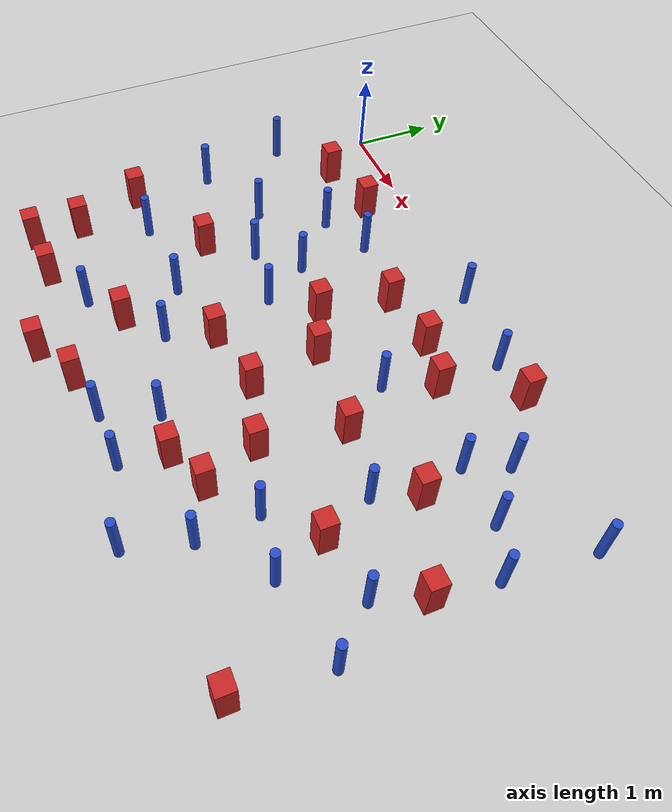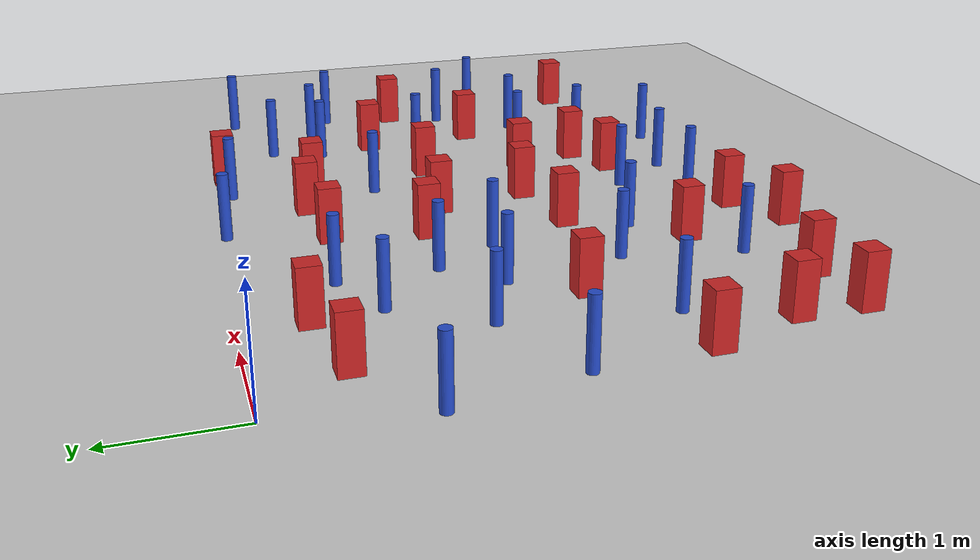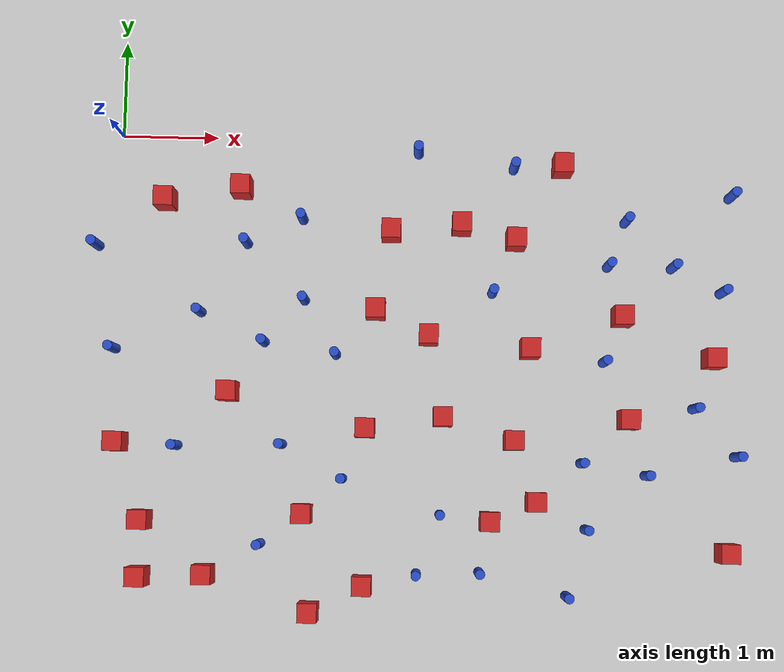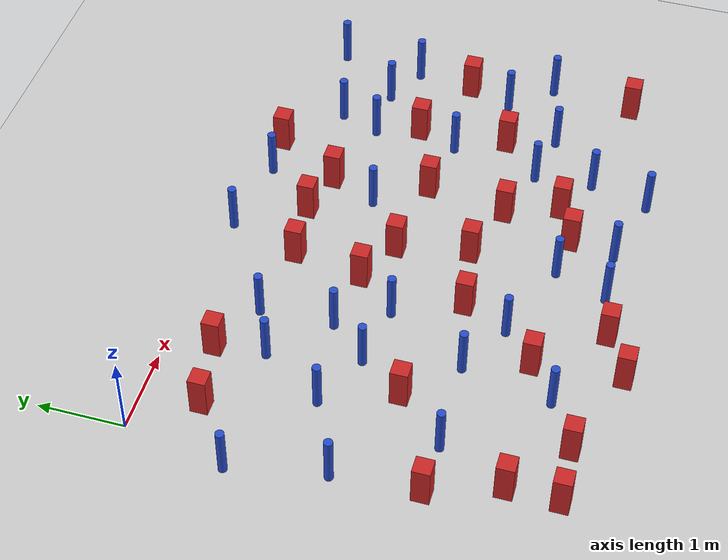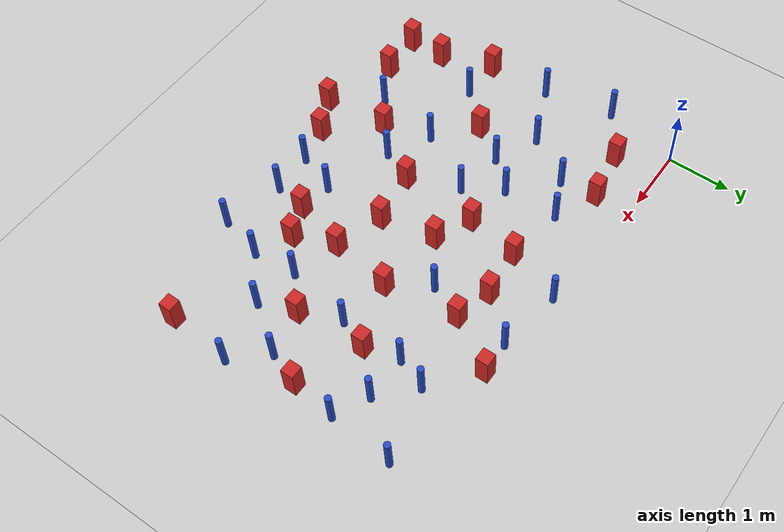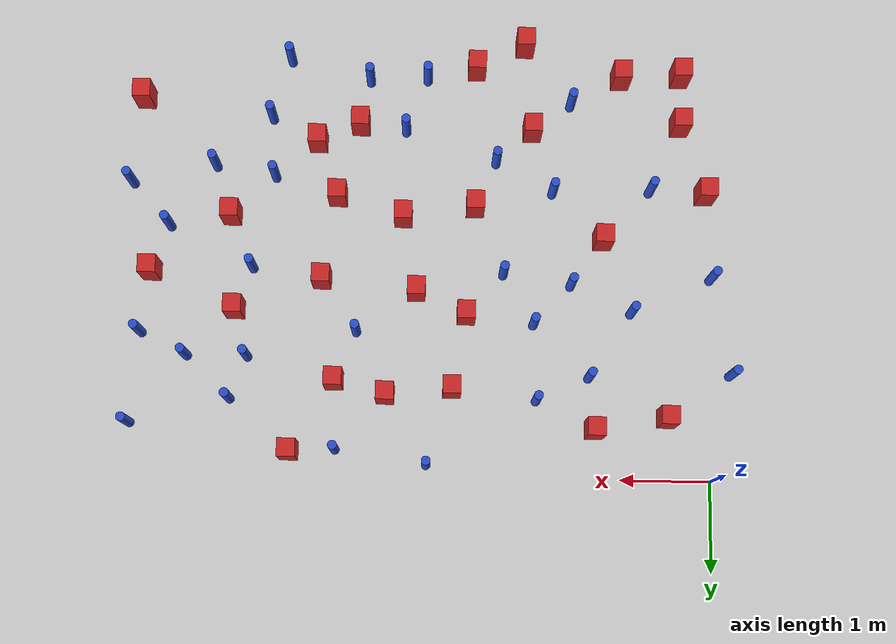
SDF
<sdf version="1.6">
 <world name="default">
  <model name="ground_plane">
   <static>1</static>
   <link name="link">
    <collision name="collision">
     <geometry><plane><normal>0 0 1</normal><size>100 100</size></plane></geometry>
     <surface><friction><ode><mu>100</mu><mu2>50</mu2></ode></friction></surface>
    </collision>
    <visual name="visual">
     <cast_shadows>0</cast_shadows>
     <geometry><plane><normal>0 0 1</normal><size>100 100</size></plane></geometry>
     <material>
      <ambient>1.0 1.0 1.0 1.0</ambient>
      <diffuse>0.8 0.8 0.8 1.0</diffuse>
      <specular>0.01 0.01 0.01 1.000000</specular>
     </material>
    </visual>
   </link>
  </model>
  <model name="square_post_obstacle0">
   <static>true</static>
   <pose>0.990860000591 -4.58058175635 1.91545236811e-07 -7.35059704564e-06 1.12565212e-07 2.39332434364e-05</pose>
   <link name="link">
    <pose>0 0 0.25 0 -0 0</pose>
    <inertial>
     <mass>100</mass>
     <inertia>
      <ixx>0.166667</ixx>
      <ixy>0</ixy>
      <ixz>0</ixz>
      <iyy>0.166667</iyy>
      <iyz>0</iyz>
      <izz>0.166667</izz>
     </inertia>
    </inertial>
    <collision name="collision"><geometry><box><size>.2 .2 .5</size></box></geometry></collision>
    <visual name="visual">
     <geometry><box><size>.2 .2 .5</size></box></geometry>
     <material>
      <script><name>Gazebo/Red</name><uri>file://media/materials/scripts/gazebo.material</uri></script>
     </material>
    </visual>
   </link>
  </model>
  <model name="square_post_obstacle1">
   <static>true</static>
   <pose>2.71421967081 -1.80625140036 1.91545236811e-07 -7.35059704564e-06 1.12565212e-07 2.39332434364e-05</pose>
   <link name="link">
    <pose>0 0 0.25 0 -0 0</pose>
    <inertial>
     <mass>100</mass>
     <inertia>
      <ixx>0.166667</ixx>
      <ixy>0</ixy>
      <ixz>0</ixz>
      <iyy>0.166667</iyy>
      <iyz>0</iyz>
      <izz>0.166667</izz>
     </inertia>
    </inertial>
    <collision name="collision"><geometry><box><size>.2 .2 .5</size></box></geometry></collision>
    <visual name="visual">
     <geometry><box><size>.2 .2 .5</size></box></geometry>
     <material>
      <script><name>Gazebo/Red</name><uri>file://media/materials/scripts/gazebo.material</uri></script>
     </material>
    </visual>
   </link>
  </model>
  <model name="pole_obstacle1">
   <static>true</static>
   <pose>4.74901094641 -4.74037949333 7.38925637345e-09 -8.47170692796e-08 1.24976764786e-08 -1.74513093032e-07</pose>
   <link name="link">
    <pose>0 0 0.3 0 -0 0</pose>
    <inertial>
     <mass>1</mass>
     <inertia><ixx>0.145833</ixx><ixy>0</ixy><ixz>0</ixz><iyy>0.145833</iyy><iyz>0</iyz><izz>0.125</izz></inertia>
    </inertial>
    <collision name="collision">
     <geometry><cylinder><radius>0.05</radius><length>.6</length></cylinder></geometry>
    </collision>
    <visual name="visual">
     <geometry><cylinder><radius>0.05</radius><length>.6</length></cylinder></geometry>
     <material>
      <script><name>Gazebo/Blue</name><uri>file://media/materials/scripts/gazebo.material</uri></script>
     </material>
    </visual>
   </link>
  </model>
  <model name="square_post_obstacle11">
   <static>true</static>
   <pose>4.16472418414 -1.04520851268 1.91545236811e-07 -7.35059704564e-06 1.12565212e-07 2.39332434364e-05</pose>
   <link name="link">
    <pose>0 0 0.25 0 -0 0</pose>
    <inertial>
     <mass>100</mass>
     <inertia>
      <ixx>0.166667</ixx>
      <ixy>0</ixy>
      <ixz>0</ixz>
      <iyy>0.166667</iyy>
      <iyz>0</iyz>
      <izz>0.166667</izz>
     </inertia>
    </inertial>
    <collision name="collision"><geometry><box><size>.2 .2 .5</size></box></geometry></collision>
    <visual name="visual">
     <geometry><box><size>.2 .2 .5</size></box></geometry>
     <material>
      <script><name>Gazebo/Red</name><uri>file://media/materials/scripts/gazebo.material</uri></script>
     </material>
    </visual>
   </link>
  </model>
  <model name="square_post_obstacle12">
   <static>true</static>
   <pose>4.32945033488 -2.18687823844 1.91545236811e-07 -7.35059704564e-06 1.12565212e-07 2.39332434364e-05</pose>
   <link name="link">
    <pose>0 0 0.25 0 -0 0</pose>
    <inertial>
     <mass>100</mass>
     <inertia>
      <ixx>0.166667</ixx>
      <ixy>0</ixy>
      <ixz>0</ixz>
      <iyy>0.166667</iyy>
      <iyz>0</iyz>
      <izz>0.166667</izz>
     </inertia>
    </inertial>
    <collision name="collision"><geometry><box><size>.2 .2 .5</size></box></geometry></collision>
    <visual name="visual">
     <geometry><box><size>.2 .2 .5</size></box></geometry>
     <material>
      <script><name>Gazebo/Red</name><uri>file://media/materials/scripts/gazebo.material</uri></script>
     </material>
    </visual>
   </link>
  </model>
  <model name="square_post_obstacle13">
   <static>true</static>
   <pose>3.93736923394 -3.98373946627 1.91545236811e-07 -7.35059704564e-06 1.12565212e-07 2.39332434364e-05</pose>
   <link name="link">
    <pose>0 0 0.25 0 -0 0</pose>
    <inertial>
     <mass>100</mass>
     <inertia>
      <ixx>0.166667</ixx>
      <ixy>0</ixy>
      <ixz>0</ixz>
      <iyy>0.166667</iyy>
      <iyz>0</iyz>
      <izz>0.166667</izz>
     </inertia>
    </inertial>
    <collision name="collision"><geometry><box><size>.2 .2 .5</size></box></geometry></collision>
    <visual name="visual">
     <geometry><box><size>.2 .2 .5</size></box></geometry>
     <material>
      <script><name>Gazebo/Red</name><uri>file://media/materials/scripts/gazebo.material</uri></script>
     </material>
    </visual>
   </link>
  </model>
  <model name="square_post_obstacle15">
   <static>true</static>
   <pose>3.27139853882 -2.06537505746 1.91545236811e-07 -7.35059704564e-06 1.12565212e-07 2.39332434364e-05</pose>
   <link name="link">
    <pose>0 0 0.25 0 -0 0</pose>
    <inertial>
     <mass>100</mass>
     <inertia>
      <ixx>0.166667</ixx>
      <ixy>0</ixy>
      <ixz>0</ixz>
      <iyy>0.166667</iyy>
      <iyz>0</iyz>
      <izz>0.166667</izz>
     </inertia>
    </inertial>
    <collision name="collision"><geometry><box><size>.2 .2 .5</size></box></geometry></collision>
    <visual name="visual">
     <geometry><box><size>.2 .2 .5</size></box></geometry>
     <material>
      <script><name>Gazebo/Red</name><uri>file://media/materials/scripts/gazebo.material</uri></script>
     </material>
    </visual>
   </link>
  </model>
  <model name="square_post_obstacle16">
   <static>true</static>
   <pose>6.40038456204 -4.26295170699 1.91545236811e-07 -7.35059704564e-06 1.12565212e-07 2.39332434364e-05</pose>
   <link name="link">
    <pose>0 0 0.25 0 -0 0</pose>
    <inertial>
     <mass>100</mass>
     <inertia>
      <ixx>0.166667</ixx>
      <ixy>0</ixy>
      <ixz>0</ixz>
      <iyy>0.166667</iyy>
      <iyz>0</iyz>
      <izz>0.166667</izz>
     </inertia>
    </inertial>
    <collision name="collision"><geometry><box><size>.2 .2 .5</size></box></geometry></collision>
    <visual name="visual">
     <geometry><box><size>.2 .2 .5</size></box></geometry>
     <material>
      <script><name>Gazebo/Red</name><uri>file://media/materials/scripts/gazebo.material</uri></script>
     </material>
    </visual>
   </link>
  </model>
  <model name="square_post_obstacle17">
   <static>true</static>
   <pose>4.64287896058 -0.257560174505 1.91545236811e-07 -7.35059704564e-06 1.12565212e-07 2.39332434364e-05</pose>
   <link name="link">
    <pose>0 0 0.25 0 -0 0</pose>
    <inertial>
     <mass>100</mass>
     <inertia>
      <ixx>0.166667</ixx>
      <ixy>0</ixy>
      <ixz>0</ixz>
      <iyy>0.166667</iyy>
      <iyz>0</iyz>
      <izz>0.166667</izz>
     </inertia>
    </inertial>
    <collision name="collision"><geometry><box><size>.2 .2 .5</size></box></geometry></collision>
    <visual name="visual">
     <geometry><box><size>.2 .2 .5</size></box></geometry>
     <material>
      <script><name>Gazebo/Red</name><uri>file://media/materials/scripts/gazebo.material</uri></script>
     </material>
    </visual>
   </link>
  </model>
  <model name="pole_obstacle19">
   <static>true</static>
   <pose>1.9608828964 -1.71179746173 7.38925637345e-09 -8.47170692795e-08 1.24976764702e-08 -1.74513093038e-07</pose>
   <link name="link">
    <pose>0 0 0.3 0 -0 0</pose>
    <inertial>
     <mass>1</mass>
     <inertia><ixx>0.145833</ixx><ixy>0</ixy><ixz>0</ixz><iyy>0.145833</iyy><iyz>0</iyz><izz>0.125</izz></inertia>
    </inertial>
    <collision name="collision">
     <geometry><cylinder><radius>0.05</radius><length>.6</length></cylinder></geometry>
    </collision>
    <visual name="visual">
     <geometry><cylinder><radius>0.05</radius><length>.6</length></cylinder></geometry>
     <material>
      <script><name>Gazebo/Blue</name><uri>file://media/materials/scripts/gazebo.material</uri></script>
     </material>
    </visual>
   </link>
  </model>
  <model name="pole_obstacle25">
   <static>true</static>
   <pose>5.11058863103 -2.30568664308 7.38925637345e-09 -8.47170692798e-08 1.24976764937e-08 -1.74513093023e-07</pose>
   <link name="link">
    <pose>0 0 0.3 0 -0 0</pose>
    <inertial>
     <mass>1</mass>
     <inertia><ixx>0.145833</ixx><ixy>0</ixy><ixz>0</ixz><iyy>0.145833</iyy><iyz>0</iyz><izz>0.125</izz></inertia>
    </inertial>
    <collision name="collision">
     <geometry><cylinder><radius>0.05</radius><length>.6</length></cylinder></geometry>
    </collision>
    <visual name="visual">
     <geometry><cylinder><radius>0.05</radius><length>.6</length></cylinder></geometry>
     <material>
      <script><name>Gazebo/Blue</name><uri>file://media/materials/scripts/gazebo.material</uri></script>
     </material>
    </visual>
   </link>
  </model>
  <model name="pole_obstacle26">
   <static>true</static>
   <pose>0.873721546564 -1.85692555196 7.38925637345e-09 -8.47170692799e-08 1.24976765033e-08 -1.7451309302e-07</pose>
   <link name="link">
    <pose>0 0 0.3 0 -0 0</pose>
    <inertial>
     <mass>1</mass>
     <inertia><ixx>0.145833</ixx><ixy>0</ixy><ixz>0</ixz><iyy>0.145833</iyy><iyz>0</iyz><izz>0.125</izz></inertia>
    </inertial>
    <collision name="collision">
     <geometry><cylinder><radius>0.05</radius><length>.6</length></cylinder></geometry>
    </collision>
    <visual name="visual">
     <geometry><cylinder><radius>0.05</radius><length>.6</length></cylinder></geometry>
     <material>
      <script><name>Gazebo/Blue</name><uri>file://media/materials/scripts/gazebo.material</uri></script>
     </material>
    </visual>
   </link>
  </model>
  <model name="pole_obstacle27">
   <static>true</static>
   <pose>6.33476286431 -1.55369546666 7.38925637345e-09 -8.471706928e-08 1.24976765134e-08 -1.74513093015e-07</pose>
   <link name="link">
    <pose>0 0 0.3 0 -0 0</pose>
    <inertial>
     <mass>1</mass>
     <inertia><ixx>0.145833</ixx><ixy>0</ixy><ixz>0</ixz><iyy>0.145833</iyy><iyz>0</iyz><izz>0.125</izz></inertia>
    </inertial>
    <collision name="collision">
     <geometry><cylinder><radius>0.05</radius><length>.6</length></cylinder></geometry>
    </collision>
    <visual name="visual">
     <geometry><cylinder><radius>0.05</radius><length>.6</length></cylinder></geometry>
     <material>
      <script><name>Gazebo/Blue</name><uri>file://media/materials/scripts/gazebo.material</uri></script>
     </material>
    </visual>
   </link>
  </model>
  <model name="pole_obstacle28">
   <static>true</static>
   <pose>2.39707074671 -3.5708932973 7.38925637345e-09 -8.47170692798e-08 1.24976764939e-08 -1.74513093025e-07</pose>
   <link name="link">
    <pose>0 0 0.3 0 -0 0</pose>
    <inertial>
     <mass>1</mass>
     <inertia><ixx>0.145833</ixx><ixy>0</ixy><ixz>0</ixz><iyy>0.145833</iyy><iyz>0</iyz><izz>0.125</izz></inertia>
    </inertial>
    <collision name="collision">
     <geometry><cylinder><radius>0.05</radius><length>.6</length></cylinder></geometry>
    </collision>
    <visual name="visual">
     <geometry><cylinder><radius>0.05</radius><length>.6</length></cylinder></geometry>
     <material>
      <script><name>Gazebo/Blue</name><uri>file://media/materials/scripts/gazebo.material</uri></script>
     </material>
    </visual>
   </link>
  </model>
  <model name="square_post_obstacle37">
   <static>true</static>
   <pose>5.36488148965 -2.90599273453 1.91545236811e-07 -7.35059704564e-06 1.12565212e-07 2.39332434364e-05</pose>
   <link name="link">
    <pose>0 0 0.25 0 -0 0</pose>
    <inertial>
     <mass>100</mass>
     <inertia>
      <ixx>0.166667</ixx>
      <ixy>0</ixy>
      <ixz>0</ixz>
      <iyy>0.166667</iyy>
      <iyz>0</iyz>
      <izz>0.166667</izz>
     </inertia>
    </inertial>
    <collision name="collision"><geometry><box><size>.2 .2 .5</size></box></geometry></collision>
    <visual name="visual">
     <geometry><box><size>.2 .2 .5</size></box></geometry>
     <material>
      <script><name>Gazebo/Red</name><uri>file://media/materials/scripts/gazebo.material</uri></script>
     </material>
    </visual>
   </link>
  </model>
  <model name="pole_obstacle43">
   <static>true</static>
   <pose>3.42120164445 -3.92526695153 7.38925637345e-09 -8.47170692798e-08 1.24976764939e-08 -1.74513093025e-07</pose>
   <link name="link">
    <pose>0 0 0.3 0 -0 0</pose>
    <inertial>
     <mass>1</mass>
     <inertia><ixx>0.145833</ixx><ixy>0</ixy><ixz>0</ixz><iyy>0.145833</iyy><iyz>0</iyz><izz>0.125</izz></inertia>
    </inertial>
    <collision name="collision">
     <geometry><cylinder><radius>0.05</radius><length>.6</length></cylinder></geometry>
    </collision>
    <visual name="visual">
     <geometry><cylinder><radius>0.05</radius><length>.6</length></cylinder></geometry>
     <material>
      <script><name>Gazebo/Blue</name><uri>file://media/materials/scripts/gazebo.material</uri></script>
     </material>
    </visual>
   </link>
  </model>
  <model name="square_post_obstacle40">
   <static>true</static>
   <pose>2.08322867867 -4.94558442279 1.91545236811e-07 -7.35059704564e-06 1.12565212e-07 2.39332434364e-05</pose>
   <link name="link">
    <pose>0 0 0.25 0 -0 0</pose>
    <inertial>
     <mass>100</mass>
     <inertia>
      <ixx>0.166667</ixx>
      <ixy>0</ixy>
      <ixz>0</ixz>
      <iyy>0.166667</iyy>
      <iyz>0</iyz>
      <izz>0.166667</izz>
     </inertia>
    </inertial>
    <collision name="collision"><geometry><box><size>.2 .2 .5</size></box></geometry></collision>
    <visual name="visual">
     <geometry><box><size>.2 .2 .5</size></box></geometry>
     <material>
      <script><name>Gazebo/Red</name><uri>file://media/materials/scripts/gazebo.material</uri></script>
     </material>
    </visual>
   </link>
  </model>
  <model name="pole_obstacle45">
   <static>true</static>
   <pose>0.660213792031 -3.25810648892 7.38925637345e-09 -8.47170692799e-08 1.2497676509e-08 -1.74513093016e-07</pose>
   <link name="link">
    <pose>0 0 0.3 0 -0 0</pose>
    <inertial>
     <mass>1</mass>
     <inertia><ixx>0.145833</ixx><ixy>0</ixy><ixz>0</ixz><iyy>0.145833</iyy><iyz>0</iyz><izz>0.125</izz></inertia>
    </inertial>
    <collision name="collision">
     <geometry><cylinder><radius>0.05</radius><length>.6</length></cylinder></geometry>
    </collision>
    <visual name="visual">
     <geometry><cylinder><radius>0.05</radius><length>.6</length></cylinder></geometry>
     <material>
      <script><name>Gazebo/Blue</name><uri>file://media/materials/scripts/gazebo.material</uri></script>
     </material>
    </visual>
   </link>
  </model>
  <model name="square_post_obstacle45">
   <static>true</static>
   <pose>2.86107081013 -0.977658585585 1.91545236811e-07 -7.35059704564e-06 1.12565212e-07 2.39332434364e-05</pose>
   <link name="link">
    <pose>0 0 0.25 0 -0 0</pose>
    <inertial>
     <mass>100</mass>
     <inertia>
      <ixx>0.166667</ixx>
      <ixy>0</ixy>
      <ixz>0</ixz>
      <iyy>0.166667</iyy>
      <iyz>0</iyz>
      <izz>0.166667</izz>
     </inertia>
    </inertial>
    <collision name="collision"><geometry><box><size>.2 .2 .5</size></box></geometry></collision>
    <visual name="visual">
     <geometry><box><size>.2 .2 .5</size></box></geometry>
     <material>
      <script><name>Gazebo/Red</name><uri>file://media/materials/scripts/gazebo.material</uri></script>
     </material>
    </visual>
   </link>
  </model>
  <model name="square_post_obstacle47">
   <static>true</static>
   <pose>1.19319943281 -2.68811275374 1.91545236811e-07 -7.35059704564e-06 1.12565212e-07 2.39332434364e-05</pose>
   <link name="link">
    <pose>0 0 0.25 0 -0 0</pose>
    <inertial>
     <mass>100</mass>
     <inertia>
      <ixx>0.166667</ixx>
      <ixy>0</ixy>
      <ixz>0</ixz>
      <iyy>0.166667</iyy>
      <iyz>0</iyz>
      <izz>0.166667</izz>
     </inertia>
    </inertial>
    <collision name="collision"><geometry><box><size>.2 .2 .5</size></box></geometry></collision>
    <visual name="visual">
     <geometry><box><size>.2 .2 .5</size></box></geometry>
     <material>
      <script><name>Gazebo/Red</name><uri>file://media/materials/scripts/gazebo.material</uri></script>
     </material>
    </visual>
   </link>
  </model>
  <model name="square_post_obstacle56">
   <static>true</static>
   <pose>2.63029791498 -4.66527144073 1.91545236811e-07 -7.35059704564e-06 1.12565212e-07 2.39332434364e-05</pose>
   <link name="link">
    <pose>0 0 0.25 0 -0 0</pose>
    <inertial>
     <mass>100</mass>
     <inertia>
      <ixx>0.166667</ixx>
      <ixy>0</ixy>
      <ixz>0</ixz>
      <iyy>0.166667</iyy>
      <iyz>0</iyz>
      <izz>0.166667</izz>
     </inertia>
    </inertial>
    <collision name="collision"><geometry><box><size>.2 .2 .5</size></box></geometry></collision>
    <visual name="visual">
     <geometry><box><size>.2 .2 .5</size></box></geometry>
     <material>
      <script><name>Gazebo/Red</name><uri>file://media/materials/scripts/gazebo.material</uri></script>
     </material>
    </visual>
   </link>
  </model>
  <model name="square_post_obstacle60">
   <static>true</static>
   <pose>3.43373152321 -2.91330845576 1.91545236811e-07 -7.35059704564e-06 1.12565212e-07 2.39332434364e-05</pose>
   <link name="link">
    <pose>0 0 0.25 0 -0 0</pose>
    <inertial>
     <mass>100</mass>
     <inertia>
      <ixx>0.166667</ixx>
      <ixy>0</ixy>
      <ixz>0</ixz>
      <iyy>0.166667</iyy>
      <iyz>0</iyz>
      <izz>0.166667</izz>
     </inertia>
    </inertial>
    <collision name="collision"><geometry><box><size>.2 .2 .5</size></box></geometry></collision>
    <visual name="visual">
     <geometry><box><size>.2 .2 .5</size></box></geometry>
     <material>
      <script><name>Gazebo/Red</name><uri>file://media/materials/scripts/gazebo.material</uri></script>
     </material>
    </visual>
   </link>
  </model>
  <model name="square_post_obstacle67">
   <static>true</static>
   <pose>1.99403761725 -3.93999227858 1.91545236811e-07 -7.35059704564e-06 1.12565212e-07 2.39332434364e-05</pose>
   <link name="link">
    <pose>0 0 0.25 0 -0 0</pose>
    <inertial>
     <mass>100</mass>
     <inertia>
      <ixx>0.166667</ixx>
      <ixy>0</ixy>
      <ixz>0</ixz>
      <iyy>0.166667</iyy>
      <iyz>0</iyz>
      <izz>0.166667</izz>
     </inertia>
    </inertial>
    <collision name="collision"><geometry><box><size>.2 .2 .5</size></box></geometry></collision>
    <visual name="visual">
     <geometry><box><size>.2 .2 .5</size></box></geometry>
     <material>
      <script><name>Gazebo/Red</name><uri>file://media/materials/scripts/gazebo.material</uri></script>
     </material>
    </visual>
   </link>
  </model>
  <model name="pole_obstacle70">
   <static>true</static>
   <pose>6.41958682657 -0.542736466618 7.38925637345e-09 -8.47170692798e-08 1.24976765005e-08 -1.74513093021e-07</pose>
   <link name="link">
    <pose>0 0 0.3 0 -0 0</pose>
    <inertial>
     <mass>1</mass>
     <inertia><ixx>0.145833</ixx><ixy>0</ixy><ixz>0</ixz><iyy>0.145833</iyy><iyz>0</iyz><izz>0.125</izz></inertia>
    </inertial>
    <collision name="collision">
     <geometry><cylinder><radius>0.05</radius><length>.6</length></cylinder></geometry>
    </collision>
    <visual name="visual">
     <geometry><cylinder><radius>0.05</radius><length>.6</length></cylinder></geometry>
     <material>
      <script><name>Gazebo/Blue</name><uri>file://media/materials/scripts/gazebo.material</uri></script>
     </material>
    </visual>
   </link>
  </model>
  <model name="square_post_obstacle77">
   <static>true</static>
   <pose>6.24360665356 -2.25287270529 1.91545236811e-07 -7.35059704564e-06 1.12565212e-07 2.39332434364e-05</pose>
   <link name="link">
    <pose>0 0 0.25 0 -0 0</pose>
    <inertial>
     <mass>100</mass>
     <inertia>
      <ixx>0.166667</ixx>
      <ixy>0</ixy>
      <ixz>0</ixz>
      <iyy>0.166667</iyy>
      <iyz>0</iyz>
      <izz>0.166667</izz>
     </inertia>
    </inertial>
    <collision name="collision"><geometry><box><size>.2 .2 .5</size></box></geometry></collision>
    <visual name="visual">
     <geometry><box><size>.2 .2 .5</size></box></geometry>
     <material>
      <script><name>Gazebo/Red</name><uri>file://media/materials/scripts/gazebo.material</uri></script>
     </material>
    </visual>
   </link>
  </model>
  <model name="pole_obstacle81">
   <static>true</static>
   <pose>1.75700302344 -3.22628030116 7.38925637345e-09 -8.47170692799e-08 1.24976765053e-08 -1.74513093017e-07</pose>
   <link name="link">
    <pose>0 0 0.3 0 -0 0</pose>
    <inertial>
     <mass>1</mass>
     <inertia><ixx>0.145833</ixx><ixy>0</ixy><ixz>0</ixz><iyy>0.145833</iyy><iyz>0</iyz><izz>0.125</izz></inertia>
    </inertial>
    <collision name="collision">
     <geometry><cylinder><radius>0.05</radius><length>.6</length></cylinder></geometry>
    </collision>
    <visual name="visual">
     <geometry><cylinder><radius>0.05</radius><length>.6</length></cylinder></geometry>
     <material>
      <script><name>Gazebo/Blue</name><uri>file://media/materials/scripts/gazebo.material</uri></script>
     </material>
    </visual>
   </link>
  </model>
  <model name="pole_obstacle98">
   <static>true</static>
   <pose>3.18713550521 -4.54122842127 7.38925637345e-09 -8.47170692798e-08 1.24976765033e-08 -1.74513093019e-07</pose>
   <link name="link">
    <pose>0 0 0.3 0 -0 0</pose>
    <inertial>
     <mass>1</mass>
     <inertia><ixx>0.145833</ixx><ixy>0</ixy><ixz>0</ixz><iyy>0.145833</iyy><iyz>0</iyz><izz>0.125</izz></inertia>
    </inertial>
    <collision name="collision">
     <geometry><cylinder><radius>0.05</radius><length>.6</length></cylinder></geometry>
    </collision>
    <visual name="visual">
     <geometry><cylinder><radius>0.05</radius><length>.6</length></cylinder></geometry>
     <material>
      <script><name>Gazebo/Blue</name><uri>file://media/materials/scripts/gazebo.material</uri></script>
     </material>
    </visual>
   </link>
  </model>
  <model name="pole_obstacle104">
   <static>true</static>
   <pose>4.94172274627 -4.05021006727 7.38925637345e-09 -8.47170692796e-08 1.24976764786e-08 -1.74513093032e-07</pose>
   <link name="link">
    <pose>0 0 0.3 0 -0 0</pose>
    <inertial>
     <mass>1</mass>
     <inertia><ixx>0.145833</ixx><ixy>0</ixy><ixz>0</ixz><iyy>0.145833</iyy><iyz>0</iyz><izz>0.125</izz></inertia>
    </inertial>
    <collision name="collision">
     <geometry><cylinder><radius>0.05</radius><length>.6</length></cylinder></geometry>
    </collision>
    <visual name="visual">
     <geometry><cylinder><radius>0.05</radius><length>.6</length></cylinder></geometry>
     <material>
      <script><name>Gazebo/Blue</name><uri>file://media/materials/scripts/gazebo.material</uri></script>
     </material>
    </visual>
   </link>
  </model>
  <model name="pole_obstacle115">
   <static>true</static>
   <pose>3.83948666435 -4.51351478296 7.38925637345e-09 -8.47170692798e-08 1.24976765033e-08 -1.74513093019e-07</pose>
   <link name="link">
    <pose>0 0 0.3 0 -0 0</pose>
    <inertial>
     <mass>1</mass>
     <inertia><ixx>0.145833</ixx><ixy>0</ixy><ixz>0</ixz><iyy>0.145833</iyy><iyz>0</iyz><izz>0.125</izz></inertia>
    </inertial>
    <collision name="collision">
     <geometry><cylinder><radius>0.05</radius><length>.6</length></cylinder></geometry>
    </collision>
    <visual name="visual">
     <geometry><cylinder><radius>0.05</radius><length>.6</length></cylinder></geometry>
     <material>
      <script><name>Gazebo/Blue</name><uri>file://media/materials/scripts/gazebo.material</uri></script>
     </material>
    </visual>
   </link>
  </model>
  <model name="pole_obstacle116">
   <static>true</static>
   <pose>4.88854843274 -3.36295378065 7.38925637345e-09 -8.47170692798e-08 1.24976764937e-08 -1.74513093023e-07</pose>
   <link name="link">
    <pose>0 0 0.3 0 -0 0</pose>
    <inertial>
     <mass>1</mass>
     <inertia><ixx>0.145833</ixx><ixy>0</ixy><ixz>0</ixz><iyy>0.145833</iyy><iyz>0</iyz><izz>0.125</izz></inertia>
    </inertial>
    <collision name="collision">
     <geometry><cylinder><radius>0.05</radius><length>.6</length></cylinder></geometry>
    </collision>
    <visual name="visual">
     <geometry><cylinder><radius>0.05</radius><length>.6</length></cylinder></geometry>
     <material>
      <script><name>Gazebo/Blue</name><uri>file://media/materials/scripts/gazebo.material</uri></script>
     </material>
    </visual>
   </link>
  </model>
  <model name="pole_obstacle123">
   <static>true</static>
   <pose>6.4992636783 -3.26579898292 7.38925637345e-09 -8.47170692798e-08 1.24976764937e-08 -1.74513093023e-07</pose>
   <link name="link">
    <pose>0 0 0.3 0 -0 0</pose>
    <inertial>
     <mass>1</mass>
     <inertia><ixx>0.145833</ixx><ixy>0</ixy><ixz>0</ixz><iyy>0.145833</iyy><iyz>0</iyz><izz>0.125</izz></inertia>
    </inertial>
    <collision name="collision">
     <geometry><cylinder><radius>0.05</radius><length>.6</length></cylinder></geometry>
    </collision>
    <visual name="visual">
     <geometry><cylinder><radius>0.05</radius><length>.6</length></cylinder></geometry>
     <material>
      <script><name>Gazebo/Blue</name><uri>file://media/materials/scripts/gazebo.material</uri></script>
     </material>
    </visual>
   </link>
  </model>
  <model name="pole_obstacle130">
   <static>true</static>
   <pose>5.31959887083 -0.825597842066 7.38925637345e-09 -8.47170692799e-08 1.24976765038e-08 -1.74513093018e-07</pose>
   <link name="link">
    <pose>0 0 0.3 0 -0 0</pose>
    <inertial>
     <mass>1</mass>
     <inertia><ixx>0.145833</ixx><ixy>0</ixy><ixz>0</ixz><iyy>0.145833</iyy><iyz>0</iyz><izz>0.125</izz></inertia>
    </inertial>
    <collision name="collision">
     <geometry><cylinder><radius>0.05</radius><length>.6</length></cylinder></geometry>
    </collision>
    <visual name="visual">
     <geometry><cylinder><radius>0.05</radius><length>.6</length></cylinder></geometry>
     <material>
      <script><name>Gazebo/Blue</name><uri>file://media/materials/scripts/gazebo.material</uri></script>
     </material>
    </visual>
   </link>
  </model>
  <model name="square_post_obstacle122">
   <static>true</static>
   <pose>1.28467136579 -0.548454533117 1.91545236811e-07 -7.35059704564e-06 1.12565212e-07 2.39332434364e-05</pose>
   <link name="link">
    <pose>0 0 0.25 0 -0 0</pose>
    <inertial>
     <mass>100</mass>
     <inertia>
      <ixx>0.166667</ixx>
      <ixy>0</ixy>
      <ixz>0</ixz>
      <iyy>0.166667</iyy>
      <iyz>0</iyz>
      <izz>0.166667</izz>
     </inertia>
    </inertial>
    <collision name="collision"><geometry><box><size>.2 .2 .5</size></box></geometry></collision>
    <visual name="visual">
     <geometry><box><size>.2 .2 .5</size></box></geometry>
     <material>
      <script><name>Gazebo/Red</name><uri>file://media/materials/scripts/gazebo.material</uri></script>
     </material>
    </visual>
   </link>
  </model>
  <model name="square_post_obstacle133">
   <static>true</static>
   <pose>4.17609282564 -3.14396728703 1.91545236811e-07 -7.35059704564e-06 1.12565212e-07 2.39332434364e-05</pose>
   <link name="link">
    <pose>0 0 0.25 0 -0 0</pose>
    <inertial>
     <mass>100</mass>
     <inertia>
      <ixx>0.166667</ixx>
      <ixy>0</ixy>
      <ixz>0</ixz>
      <iyy>0.166667</iyy>
      <iyz>0</iyz>
      <izz>0.166667</izz>
     </inertia>
    </inertial>
    <collision name="collision"><geometry><box><size>.2 .2 .5</size></box></geometry></collision>
    <visual name="visual">
     <geometry><box><size>.2 .2 .5</size></box></geometry>
     <material>
      <script><name>Gazebo/Red</name><uri>file://media/materials/scripts/gazebo.material</uri></script>
     </material>
    </visual>
   </link>
  </model>
  <model name="pole_obstacle146">
   <static>true</static>
   <pose>-0.0175165638852 -2.25791501147 7.38925637345e-09 -8.471706928e-08 1.24976765109e-08 -1.74513093013e-07</pose>
   <link name="link">
    <pose>0 0 0.3 0 -0 0</pose>
    <inertial>
     <mass>1</mass>
     <inertia><ixx>0.145833</ixx><ixy>0</ixy><ixz>0</ixz><iyy>0.145833</iyy><iyz>0</iyz><izz>0.125</izz></inertia>
    </inertial>
    <collision name="collision">
     <geometry><cylinder><radius>0.05</radius><length>.6</length></cylinder></geometry>
    </collision>
    <visual name="visual">
     <geometry><cylinder><radius>0.05</radius><length>.6</length></cylinder></geometry>
     <material>
      <script><name>Gazebo/Blue</name><uri>file://media/materials/scripts/gazebo.material</uri></script>
     </material>
    </visual>
   </link>
  </model>
  <model name="pole_obstacle152">
   <static>true</static>
   <pose>1.92618480086 -0.85685027989 7.38925637345e-09 -8.47170692799e-08 1.24976765075e-08 -1.74513093017e-07</pose>
   <link name="link">
    <pose>0 0 0.3 0 -0 0</pose>
    <inertial>
     <mass>1</mass>
     <inertia><ixx>0.145833</ixx><ixy>0</ixy><ixz>0</ixz><iyy>0.145833</iyy><iyz>0</iyz><izz>0.125</izz></inertia>
    </inertial>
    <collision name="collision">
     <geometry><cylinder><radius>0.05</radius><length>.6</length></cylinder></geometry>
    </collision>
    <visual name="visual">
     <geometry><cylinder><radius>0.05</radius><length>.6</length></cylinder></geometry>
     <material>
      <script><name>Gazebo/Blue</name><uri>file://media/materials/scripts/gazebo.material</uri></script>
     </material>
    </visual>
   </link>
  </model>
  <model name="pole_obstacle155">
   <static>true</static>
   <pose>-0.225854658204 -1.17521992911 7.38925637345e-09 -8.47170692799e-08 1.24976765077e-08 -1.74513093016e-07</pose>
   <link name="link">
    <pose>0 0 0.3 0 -0 0</pose>
    <inertial>
     <mass>1</mass>
     <inertia><ixx>0.145833</ixx><ixy>0</ixy><ixz>0</ixz><iyy>0.145833</iyy><iyz>0</iyz><izz>0.125</izz></inertia>
    </inertial>
    <collision name="collision">
     <geometry><cylinder><radius>0.05</radius><length>.6</length></cylinder></geometry>
    </collision>
    <visual name="visual">
     <geometry><cylinder><radius>0.05</radius><length>.6</length></cylinder></geometry>
     <material>
      <script><name>Gazebo/Blue</name><uri>file://media/materials/scripts/gazebo.material</uri></script>
     </material>
    </visual>
   </link>
  </model>
  <model name="square_post_obstacle146">
   <static>true</static>
   <pose>0.487064095882 -0.686298833433 1.91545236811e-07 -7.35059704564e-06 1.12565212e-07 2.39332434364e-05</pose>
   <link name="link">
    <pose>0 0 0.25 0 -0 0</pose>
    <inertial>
     <mass>100</mass>
     <inertia>
      <ixx>0.166667</ixx>
      <ixy>0</ixy>
      <ixz>0</ixz>
      <iyy>0.166667</iyy>
      <iyz>0</iyz>
      <izz>0.166667</izz>
     </inertia>
    </inertial>
    <collision name="collision"><geometry><box><size>.2 .2 .5</size></box></geometry></collision>
    <visual name="visual">
     <geometry><box><size>.2 .2 .5</size></box></geometry>
     <material>
      <script><name>Gazebo/Red</name><uri>file://media/materials/scripts/gazebo.material</uri></script>
     </material>
    </visual>
   </link>
  </model>
  <model name="pole_obstacle156">
   <static>true</static>
   <pose>2.30446930341 -2.27716155258 7.38925637345e-09 -8.47170692798e-08 1.24976764939e-08 -1.74513093025e-07</pose>
   <link name="link">
    <pose>0 0 0.3 0 -0 0</pose>
    <inertial>
     <mass>1</mass>
     <inertia><ixx>0.145833</ixx><ixy>0</ixy><ixz>0</ixz><iyy>0.145833</iyy><iyz>0</iyz><izz>0.125</izz></inertia>
    </inertial>
    <collision name="collision">
     <geometry><cylinder><radius>0.05</radius><length>.6</length></cylinder></geometry>
    </collision>
    <visual name="visual">
     <geometry><cylinder><radius>0.05</radius><length>.6</length></cylinder></geometry>
     <material>
      <script><name>Gazebo/Blue</name><uri>file://media/materials/scripts/gazebo.material</uri></script>
     </material>
    </visual>
   </link>
  </model>
  <model name="square_post_obstacle149">
   <static>true</static>
   <pose>2.62945015652 -3.04431370096 1.91545236811e-07 -7.35059704564e-06 1.12565212e-07 2.39332434364e-05</pose>
   <link name="link">
    <pose>0 0 0.25 0 -0 0</pose>
    <inertial>
     <mass>100</mass>
     <inertia>
      <ixx>0.166667</ixx>
      <ixy>0</ixy>
      <ixz>0</ixz>
      <iyy>0.166667</iyy>
      <iyz>0</iyz>
      <izz>0.166667</izz>
     </inertia>
    </inertial>
    <collision name="collision"><geometry><box><size>.2 .2 .5</size></box></geometry></collision>
    <visual name="visual">
     <geometry><box><size>.2 .2 .5</size></box></geometry>
     <material>
      <script><name>Gazebo/Red</name><uri>file://media/materials/scripts/gazebo.material</uri></script>
     </material>
    </visual>
   </link>
  </model>
  <model name="pole_obstacle158">
   <static>true</static>
   <pose>4.1378065178 -0.279824089648 7.38925637345e-09 -8.47170692801e-08 1.24976765176e-08 -1.74513093013e-07</pose>
   <link name="link">
    <pose>0 0 0.3 0 -0 0</pose>
    <inertial>
     <mass>1</mass>
     <inertia><ixx>0.145833</ixx><ixy>0</ixy><ixz>0</ixz><iyy>0.145833</iyy><iyz>0</iyz><izz>0.125</izz></inertia>
    </inertial>
    <collision name="collision">
     <geometry><cylinder><radius>0.05</radius><length>.6</length></cylinder></geometry>
    </collision>
    <visual name="visual">
     <geometry><cylinder><radius>0.05</radius><length>.6</length></cylinder></geometry>
     <material>
      <script><name>Gazebo/Blue</name><uri>file://media/materials/scripts/gazebo.material</uri></script>
     </material>
    </visual>
   </link>
  </model>
  <model name="pole_obstacle160">
   <static>true</static>
   <pose>5.56297505821 -3.47843863543 7.38925637345e-09 -8.47170692798e-08 1.24976764937e-08 -1.74513093023e-07</pose>
   <link name="link">
    <pose>0 0 0.3 0 -0 0</pose>
    <inertial>
     <mass>1</mass>
     <inertia><ixx>0.145833</ixx><ixy>0</ixy><ixz>0</ixz><iyy>0.145833</iyy><iyz>0</iyz><izz>0.125</izz></inertia>
    </inertial>
    <collision name="collision">
     <geometry><cylinder><radius>0.05</radius><length>.6</length></cylinder></geometry>
    </collision>
    <visual name="visual">
     <geometry><cylinder><radius>0.05</radius><length>.6</length></cylinder></geometry>
     <material>
      <script><name>Gazebo/Blue</name><uri>file://media/materials/scripts/gazebo.material</uri></script>
     </material>
    </visual>
   </link>
  </model>
  <model name="pole_obstacle165">
   <static>true</static>
   <pose>3.13114243956 -0.129535527923 7.38925637345e-09 -8.471706928e-08 1.24976765208e-08 -1.7451309301e-07</pose>
   <link name="link">
    <pose>0 0 0.3 0 -0 0</pose>
    <inertial>
     <mass>1</mass>
     <inertia><ixx>0.145833</ixx><ixy>0</ixy><ixz>0</ixz><iyy>0.145833</iyy><iyz>0</iyz><izz>0.125</izz></inertia>
    </inertial>
    <collision name="collision">
     <geometry><cylinder><radius>0.05</radius><length>.6</length></cylinder></geometry>
    </collision>
    <visual name="visual">
     <geometry><cylinder><radius>0.05</radius><length>.6</length></cylinder></geometry>
     <material>
      <script><name>Gazebo/Blue</name><uri>file://media/materials/scripts/gazebo.material</uri></script>
     </material>
    </visual>
   </link>
  </model>
  <model name="pole_obstacle166">
   <static>true</static>
   <pose>1.5572823442 -4.260019172 7.38925637345e-09 -8.47170692799e-08 1.24976765033e-08 -1.74513093018e-07</pose>
   <link name="link">
    <pose>0 0 0.3 0 -0 0</pose>
    <inertial>
     <mass>1</mass>
     <inertia><ixx>0.145833</ixx><ixy>0</ixy><ixz>0</ixz><iyy>0.145833</iyy><iyz>0</iyz><izz>0.125</izz></inertia>
    </inertial>
    <collision name="collision">
     <geometry><cylinder><radius>0.05</radius><length>.6</length></cylinder></geometry>
    </collision>
    <visual name="visual">
     <geometry><cylinder><radius>0.05</radius><length>.6</length></cylinder></geometry>
     <material>
      <script><name>Gazebo/Blue</name><uri>file://media/materials/scripts/gazebo.material</uri></script>
     </material>
    </visual>
   </link>
  </model>
  <model name="square_post_obstacle168">
   <static>true</static>
   <pose>0.320128779767 -4.03211207379 1.91545236811e-07 -7.35059704564e-06 1.12565212e-07 2.39332434364e-05</pose>
   <link name="link">
    <pose>0 0 0.25 0 -0 0</pose>
    <inertial>
     <mass>100</mass>
     <inertia>
      <ixx>0.166667</ixx>
      <ixy>0</ixy>
      <ixz>0</ixz>
      <iyy>0.166667</iyy>
      <iyz>0</iyz>
      <izz>0.166667</izz>
     </inertia>
    </inertial>
    <collision name="collision"><geometry><box><size>.2 .2 .5</size></box></geometry></collision>
    <visual name="visual">
     <geometry><box><size>.2 .2 .5</size></box></geometry>
     <material>
      <script><name>Gazebo/Red</name><uri>file://media/materials/scripts/gazebo.material</uri></script>
     </material>
    </visual>
   </link>
  </model>
  <model name="pole_obstacle183">
   <static>true</static>
   <pose>3.93365029297 -1.59863692685 7.38925637345e-09 -8.471706928e-08 1.24976765152e-08 -1.74513093012e-07</pose>
   <link name="link">
    <pose>0 0 0.3 0 -0 0</pose>
    <inertial>
     <mass>1</mass>
     <inertia><ixx>0.145833</ixx><ixy>0</ixy><ixz>0</ixz><iyy>0.145833</iyy><iyz>0</iyz><izz>0.125</izz></inertia>
    </inertial>
    <collision name="collision">
     <geometry><cylinder><radius>0.05</radius><length>.6</length></cylinder></geometry>
    </collision>
    <visual name="visual">
     <geometry><cylinder><radius>0.05</radius><length>.6</length></cylinder></geometry>
     <material>
      <script><name>Gazebo/Blue</name><uri>file://media/materials/scripts/gazebo.material</uri></script>
     </material>
    </visual>
   </link>
  </model>
  <model name="pole_obstacle184">
   <static>true</static>
   <pose>5.14163539622 -1.29890644399 7.38925637345e-09 -8.471706928e-08 1.24976765134e-08 -1.74513093015e-07</pose>
   <link name="link">
    <pose>0 0 0.3 0 -0 0</pose>
    <inertial>
     <mass>1</mass>
     <inertia><ixx>0.145833</ixx><ixy>0</ixy><ixz>0</ixz><iyy>0.145833</iyy><iyz>0</iyz><izz>0.125</izz></inertia>
    </inertial>
    <collision name="collision">
     <geometry><cylinder><radius>0.05</radius><length>.6</length></cylinder></geometry>
    </collision>
    <visual name="visual">
     <geometry><cylinder><radius>0.05</radius><length>.6</length></cylinder></geometry>
     <material>
      <script><name>Gazebo/Blue</name><uri>file://media/materials/scripts/gazebo.material</uri></script>
     </material>
    </visual>
   </link>
  </model>
  <model name="pole_obstacle190">
   <static>true</static>
   <pose>1.54885314244 -2.15996396434 7.38925637345e-09 -8.47170692799e-08 1.24976765053e-08 -1.74513093017e-07</pose>
   <link name="link">
    <pose>0 0 0.3 0 -0 0</pose>
    <inertial>
     <mass>1</mass>
     <inertia><ixx>0.145833</ixx><ixy>0</ixy><ixz>0</ixz><iyy>0.145833</iyy><iyz>0</iyz><izz>0.125</izz></inertia>
    </inertial>
    <collision name="collision">
     <geometry><cylinder><radius>0.05</radius><length>.6</length></cylinder></geometry>
    </collision>
    <visual name="visual">
     <geometry><cylinder><radius>0.05</radius><length>.6</length></cylinder></geometry>
     <material>
      <script><name>Gazebo/Blue</name><uri>file://media/materials/scripts/gazebo.material</uri></script>
     </material>
    </visual>
   </link>
  </model>
  <model name="square_post_obstacle182">
   <static>true</static>
   <pose>0.312974428589 -4.61514781297 1.91545236811e-07 -7.35059704564e-06 1.12565212e-07 2.39332434364e-05</pose>
   <link name="link">
    <pose>0 0 0.25 0 -0 0</pose>
    <inertial>
     <mass>100</mass>
     <inertia>
      <ixx>0.166667</ixx>
      <ixy>0</ixy>
      <ixz>0</ixz>
      <iyy>0.166667</iyy>
      <iyz>0</iyz>
      <izz>0.166667</izz>
     </inertia>
    </inertial>
    <collision name="collision"><geometry><box><size>.2 .2 .5</size></box></geometry></collision>
    <visual name="visual">
     <geometry><box><size>.2 .2 .5</size></box></geometry>
     <material>
      <script><name>Gazebo/Red</name><uri>file://media/materials/scripts/gazebo.material</uri></script>
     </material>
    </visual>
   </link>
  </model>
  <model name="pole_obstacle191">
   <static>true</static>
   <pose>6.05714869651 -2.77328541938 7.38925637345e-09 -8.47170692798e-08 1.24976764937e-08 -1.74513093023e-07</pose>
   <link name="link">
    <pose>0 0 0.3 0 -0 0</pose>
    <inertial>
     <mass>1</mass>
     <inertia><ixx>0.145833</ixx><ixy>0</ixy><ixz>0</ixz><iyy>0.145833</iyy><iyz>0</iyz><izz>0.125</izz></inertia>
    </inertial>
    <collision name="collision">
     <geometry><cylinder><radius>0.05</radius><length>.6</length></cylinder></geometry>
    </collision>
    <visual name="visual">
     <geometry><cylinder><radius>0.05</radius><length>.6</length></cylinder></geometry>
     <material>
      <script><name>Gazebo/Blue</name><uri>file://media/materials/scripts/gazebo.material</uri></script>
     </material>
    </visual>
   </link>
  </model>
  <model name="square_post_obstacle184">
   <static>true</static>
   <pose>3.59510659047 -0.896225289333 1.91545236811e-07 -7.35059704564e-06 1.12565212e-07 2.39332434364e-05</pose>
   <link name="link">
    <pose>0 0 0.25 0 -0 0</pose>
    <inertial>
     <mass>100</mass>
     <inertia>
      <ixx>0.166667</ixx>
      <ixy>0</ixy>
      <ixz>0</ixz>
      <iyy>0.166667</iyy>
      <iyz>0</iyz>
      <izz>0.166667</izz>
     </inertia>
    </inertial>
    <collision name="collision"><geometry><box><size>.2 .2 .5</size></box></geometry></collision>
    <visual name="visual">
     <geometry><box><size>.2 .2 .5</size></box></geometry>
     <material>
      <script><name>Gazebo/Red</name><uri>file://media/materials/scripts/gazebo.material</uri></script>
     </material>
    </visual>
   </link>
  </model>
  <model name="square_post_obstacle185">
   <static>true</static>
   <pose>4.41485882934 -3.77392108967 1.91545236811e-07 -7.35059704564e-06 1.12565212e-07 2.39332434364e-05</pose>
   <link name="link">
    <pose>0 0 0.25 0 -0 0</pose>
    <inertial>
     <mass>100</mass>
     <inertia>
      <ixx>0.166667</ixx>
      <ixy>0</ixy>
      <ixz>0</ixz>
      <iyy>0.166667</iyy>
      <iyz>0</iyz>
      <izz>0.166667</izz>
     </inertia>
    </inertial>
    <collision name="collision"><geometry><box><size>.2 .2 .5</size></box></geometry></collision>
    <visual name="visual">
     <geometry><box><size>.2 .2 .5</size></box></geometry>
     <material>
      <script><name>Gazebo/Red</name><uri>file://media/materials/scripts/gazebo.material</uri></script>
     </material>
    </visual>
   </link>
  </model>
  <model name="pole_obstacle193">
   <static>true</static>
   <pose>5.81701631063 -1.30078802831 7.38925637345e-09 -8.471706928e-08 1.24976765134e-08 -1.74513093015e-07</pose>
   <link name="link">
    <pose>0 0 0.3 0 -0 0</pose>
    <inertial>
     <mass>1</mass>
     <inertia><ixx>0.145833</ixx><ixy>0</ixy><ixz>0</ixz><iyy>0.145833</iyy><iyz>0</iyz><izz>0.125</izz></inertia>
    </inertial>
    <collision name="collision">
     <geometry><cylinder><radius>0.05</radius><length>.6</length></cylinder></geometry>
    </collision>
    <visual name="visual">
     <geometry><cylinder><radius>0.05</radius><length>.6</length></cylinder></geometry>
     <material>
      <script><name>Gazebo/Blue</name><uri>file://media/materials/scripts/gazebo.material</uri></script>
     </material>
    </visual>
   </link>
  </model>
  <model name="pole_obstacle195">
   <static>true</static>
   <pose>1.3438723348 -1.12354096259 7.38925637345e-09 -8.471706928e-08 1.24976765079e-08 -1.74513093017e-07</pose>
   <link name="link">
    <pose>0 0 0.3 0 -0 0</pose>
    <inertial>
     <mass>1</mass>
     <inertia><ixx>0.145833</ixx><ixy>0</ixy><ixz>0</ixz><iyy>0.145833</iyy><iyz>0</iyz><izz>0.125</izz></inertia>
    </inertial>
    <collision name="collision">
     <geometry><cylinder><radius>0.05</radius><length>.6</length></cylinder></geometry>
    </collision>
    <visual name="visual">
     <geometry><cylinder><radius>0.05</radius><length>.6</length></cylinder></geometry>
     <material>
      <script><name>Gazebo/Blue</name><uri>file://media/materials/scripts/gazebo.material</uri></script>
     </material>
    </visual>
   </link>
  </model>
  <model name="square_post_obstacle196">
   <static>true</static>
   <pose>0.0417976162477 -3.23314509271 1.91545236811e-07 -7.35059704564e-06 1.12565212e-07 2.39332434364e-05</pose>
   <link name="link">
    <pose>0 0 0.25 0 -0 0</pose>
    <inertial>
     <mass>100</mass>
     <inertia>
      <ixx>0.166667</ixx>
      <ixy>0</ixy>
      <ixz>0</ixz>
      <iyy>0.166667</iyy>
      <iyz>0</iyz>
      <izz>0.166667</izz>
     </inertia>
    </inertial>
    <collision name="collision"><geometry><box><size>.2 .2 .5</size></box></geometry></collision>
    <visual name="visual">
     <geometry><box><size>.2 .2 .5</size></box></geometry>
     <material>
      <script><name>Gazebo/Red</name><uri>file://media/materials/scripts/gazebo.material</uri></script>
     </material>
    </visual>
   </link>
  </model>
  <model name="square_post_obstacle197">
   <static>true</static>
   <pose>5.28911507605 -1.83004733654 1.91545236811e-07 -7.35059704564e-06 1.12565212e-07 2.39332434364e-05</pose>
   <link name="link">
    <pose>0 0 0.25 0 -0 0</pose>
    <inertial>
     <mass>100</mass>
     <inertia>
      <ixx>0.166667</ixx>
      <ixy>0</ixy>
      <ixz>0</ixz>
      <iyy>0.166667</iyy>
      <iyz>0</iyz>
      <izz>0.166667</izz>
     </inertia>
    </inertial>
    <collision name="collision"><geometry><box><size>.2 .2 .5</size></box></geometry></collision>
    <visual name="visual">
     <geometry><box><size>.2 .2 .5</size></box></geometry>
     <material>
      <script><name>Gazebo/Red</name><uri>file://media/materials/scripts/gazebo.material</uri></script>
     </material>
    </visual>
   </link>
  </model>
 </world>
</sdf>
